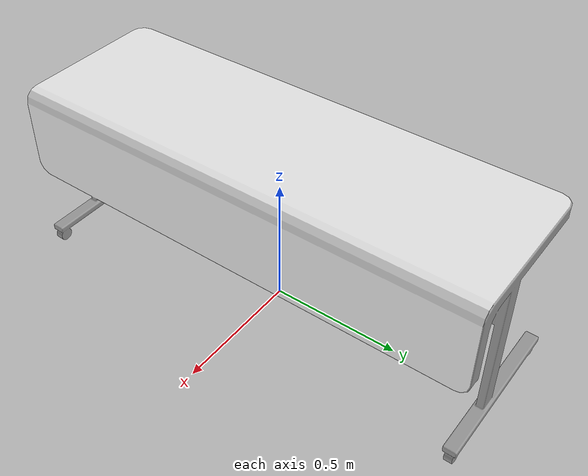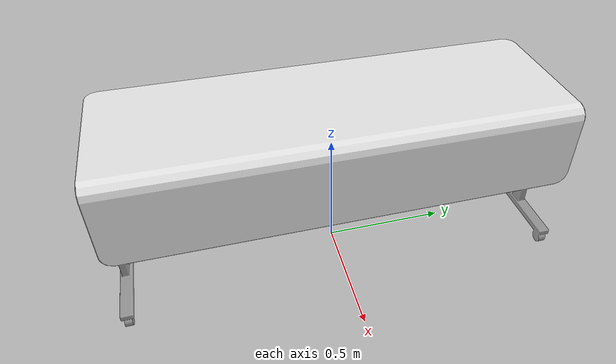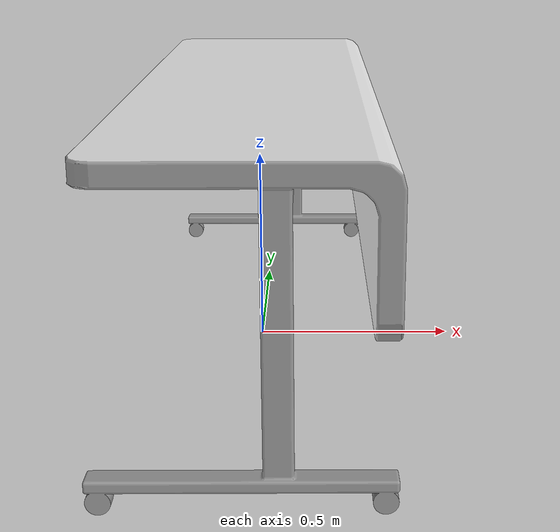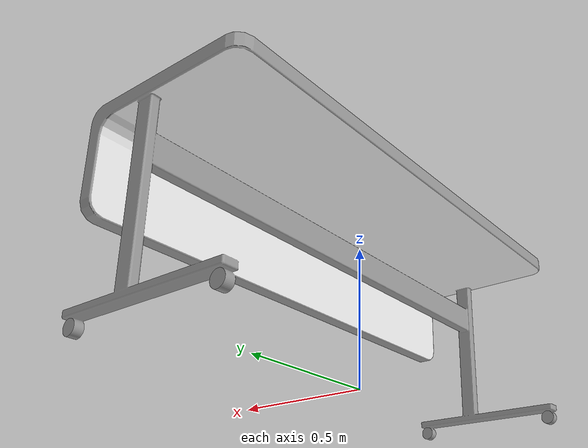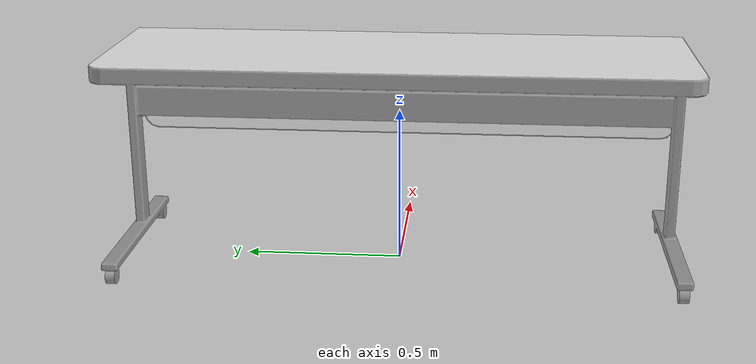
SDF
<?xml version='1.0'?>
<sdf version="1.6">
<model name="long_table">
  <pose>0 0 0 0 0 0</pose>
    <link name="link">
      <inertial>
        <pose>0.087 0 0.587 0 0 0</pose>
        <mass>9.1</mass>
        <inertia>
          <ixx>2.7818</ixx>
          <ixy>0.0</ixy>
          <ixz>0.0766</ixz>
          <iyy>0.4542</iyy>
          <iyz>0.0</iyz>
          <izz>2.9349</izz>
        </inertia>
      </inertial>
      <collision name="collision">
        <geometry>
          <mesh>
            <uri>model://long_table/long_table.dae</uri>
          </mesh>
        </geometry>
      </collision>
      <visual name="visual">
        <geometry>
          <mesh>
            <uri>model://long_table/long_table.dae</uri>
          </mesh>
        </geometry>
      </visual>
    </link>
  </model>
</sdf>
